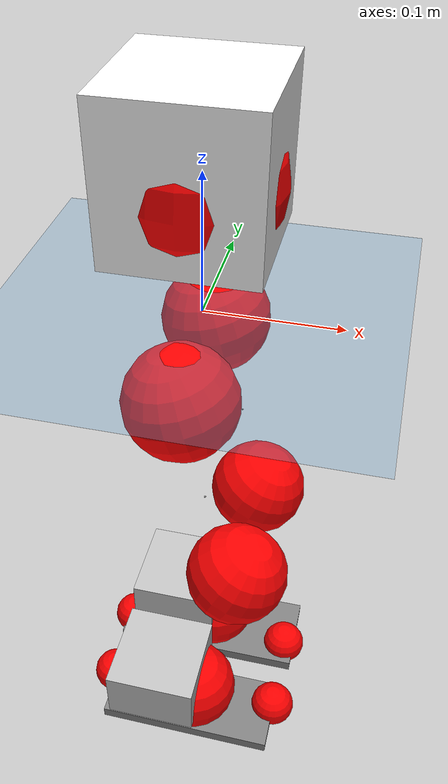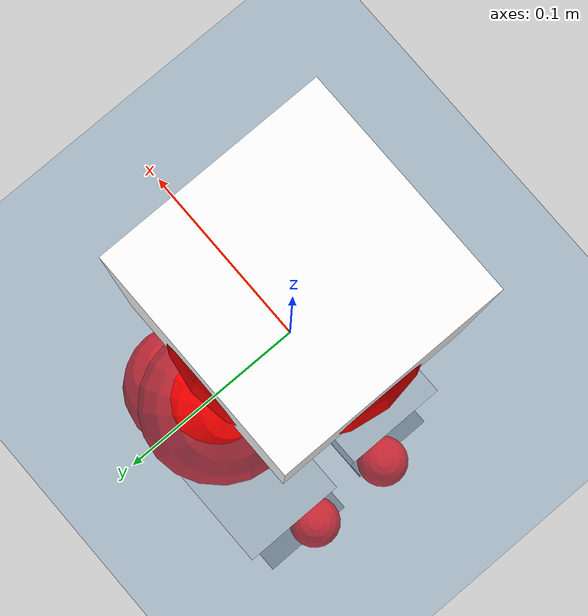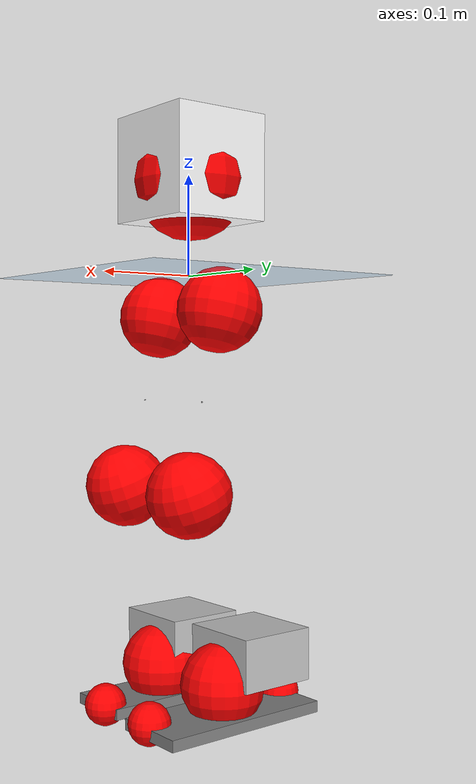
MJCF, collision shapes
<mujoco model="pi_12dof_release_v1">
  <compiler angle="radian" assetdir="assets" balanceinertia="true" inertiafromgeom="false"/>

  <option timestep="0.005" density="1.2" viscosity="2e-05"/>

  <size nkey="1"/>

  <visual>
    <quality shadowsize="8192"/>
    <map shadowclip="0.5"/>
  </visual>

  <default>
    <default class="/">
      <joint armature="0.01" damping="0.01" frictionloss="0.01"/>
      <geom contype="0" conaffinity="0" group="1" solref="-1000 -80"/>
      <site size="0.01 0.005 0.005" group="5"/>
      <general forcelimited="true" biastype="affine" gainprm="20" biasprm="0 -20 -0.5"/>
      <default class="foot">
        <geom size="0.0845 0.036 0.005" type="box" condim="6" group="4" priority="1" friction="0.9 0.2 0.2" solimp="0.015 1 0.005"/>
      </default>
      <default class="reward_collision_sphere">
        <geom group="5" rgba="1 0 0 1"/>
      </default>
    </default>
  </default>

  <asset>
    <texture type="skybox" colorspace="auto" name="//unnamed_texture_0" builtin="gradient" rgb1="0.95 0.95 0.95" rgb2="0.95 0.95 0.95" width="100" height="600"/>
    <texture type="2d" colorspace="auto" name="texplane" builtin="checker" rgb1="0.345 0.575 0.748" rgb2="0.345 0.575 0.748" markrgb="1 1 1" width="512" height="512"/>
    <material name="MatPlane" class="/" texture="texplane" texuniform="true" texrepeat="2 2" specular="0.9"/>
    <mesh name="baselink_1" class="/" file="baselink_1.STL"/>
    <mesh name="r_hip_pitch_link" class="/" file="r_hip_pitch_link.STL"/>
    <mesh name="r_hip_roll_link" class="/" file="r_hip_roll_link.STL"/>
    <mesh name="r_thigh_link" class="/" file="r_thigh_link.STL"/>
    <mesh name="r_calf_link" class="/" file="r_calf_link.STL"/>
    <mesh name="r_ankle_pitch_link" class="/" file="r_ankle_pitch_link.STL"/>
    <mesh name="r_ankle_roll_link" class="/" file="r_ankle_roll_link.STL"/>
    <mesh name="l_hip_pitch_link" class="/" file="l_hip_pitch_link.STL"/>
    <mesh name="l_hip_roll_link" class="/" file="l_hip_roll_link.STL"/>
    <mesh name="l_thigh_link" class="/" file="l_thigh_link.STL"/>
    <mesh name="l_calf_link" class="/" file="l_calf_link.STL"/>
    <mesh name="l_ankle_pitch_link" class="/" file="l_ankle_pitch_link.STL"/>
    <mesh name="l_ankle_roll_link" class="/" file="l_ankle_roll_link.STL"/>
  </asset>

  <worldbody>
    <geom name="floor" class="/" size="100 100 0.125" type="plane" group="0" material="MatPlane"/>
    <light name="toplight_shadow" class="/" pos="0 0 5" dir="0.0990148 0.0990148 -0.990148" type="directional" ambient="0.04 0.04 0.04" diffuse="0.55 0.55 0.55" specular="0.12 0.12 0.12"/>
    <light name="toplight_fill" class="/" pos="0 0 5" dir="0.0990148 0.0990148 -0.990148" type="directional" castshadow="false" ambient="0.04 0.04 0.04" diffuse="0.3 0.3 0.3" specular="0.08 0.08 0.08"/>
    <body name="trunk" pos="-0.00250303 -0.000508823 0.00218179" quat="1 0.000551557 -0.000517139 -0.00021815">
      <inertial pos="0.00839835 0.00246684 0.0507663" quat="0.700399 0.0191888 0.0132312 0.713371" mass="2.3943" diaginertia="0.0266854 0.000881658 0.016032"/>
      <joint name="//unnamed_joint_0" type="free"/>
      <geom name="//unnamed_geom_1" class="/" type="mesh" density="0" rgba="1 1 1 1" mesh="baselink_1"/>
      <geom name="//unnamed_geom_2" class="/" size="0.052426 0.052426 0.052426" pos="0 0 0.103862" type="box" rgba="1 1 1 1"/>
      <geom name="//unnamed_geom_3" class="reward_collision_sphere" size="0.0576686" pos="0 0 0.0908793"/>
      <site name="imu" class="/" pos="-0.018165 -0.0017016 0.0179184" size="0.0104852"/>
      <camera name="track" class="/" pos="0 -1.25175 0" quat="0.707107 0.707107 0 0" mode="trackcom"/>
      <camera name="ego_camera" class="/" pos="0.0916058 0 0.23369" quat="-0.5 -0.5 0.5 0.5"/>
      <body name="r_hip_pitch_link" pos="0.00121526 -0.0124755 -0.0432473" quat="0.992215 3.03302e-06 -0.124539 1.74324e-05">
        <inertial pos="0.000904081 -0.0337917 -4.12184e-05" quat="-0.0186106 0.705677 -0.0287408 0.707705" mass="0.461547" diaginertia="0.000312772 1.02835e-05 0.000326179"/>
        <joint name="r_hip_pitch_joint" class="/" pos="0 0 0" axis="-0.00199113 -0.999998 0.000851021" range="-1.71192 1.3336" armature="0.0117179" damping="0.013947" frictionloss="0.00956637"/>
        <geom name="//unnamed_geom_4" class="/" type="mesh" density="0" rgba="0.75294 0.75294 0.75294 1" mesh="r_hip_pitch_link"/>
        <geom name="//unnamed_geom_5" class="/" size="0.00052426 0.00052426 0.00052426" type="box" rgba="0.75294 0.75294 0.75294 1"/>
        <body name="r_hip_roll_link" pos="-0.000584406 -0.0396121 0.00130377" quat="0.999999 0.00105542 0.00110543 -0.000479001">
          <inertial pos="0.000556814 -0.000490157 -0.0788362" quat="0.706224 -0.0819917 -0.0888773 0.697586" mass="0.44315" diaginertia="0.000890814 2.78067e-05 0.000479185"/>
          <joint name="r_hip_roll_joint" class="/" pos="0 0 0" axis="-0.999989 0.00422927 0.0021943" range="-0.0791912 0.496908" armature="0.0104881" damping="0.0273537" frictionloss="0.00837648"/>
          <geom name="//unnamed_geom_6" class="/" type="mesh" density="0" rgba="0.75294 0.75294 0.75294 1" mesh="r_hip_roll_link"/>
          <geom name="//unnamed_geom_7" class="/" size="0.00052426 0.00052426 0.00052426" type="box" rgba="0.75294 0.75294 0.75294 1"/>
          <geom name="//unnamed_geom_8" class="reward_collision_sphere" size="0.0419408"/>
          <body name="r_thigh_link" pos="-0.00396737 -0.00277009 -0.0872371" quat="0.999999 0.000178523 0.000881989 0.000956418">
            <inertial pos="0.000743103 0.00399726 -0.0631837" quat="0.737097 0.675784 -0.000942028 -0.00174604" mass="0.124734" diaginertia="0.000338185 8.99614e-06 0.000213736"/>
            <joint name="r_thigh_joint" class="/" pos="0 0 0" axis="0.00312071 -0.00528349 -0.999981" range="-0.286946 0.52732" armature="0.00829171" damping="0" frictionloss="0.0110932"/>
            <geom name="//unnamed_geom_9" class="/" type="mesh" density="0" rgba="0.75294 0.75294 0.75294 1" mesh="r_thigh_link"/>
            <geom name="//unnamed_geom_10" class="/" size="0.00052426 0.00052426 0.00052426" type="box" rgba="0.75294 0.75294 0.75294 1"/>
            <body name="r_calf_link" pos="0.00396785 0.00352974 -0.091438" quat="0.947677 -0.000115384 0.319232 0.000165913">
              <inertial pos="-0.000534766 0.00496592 -0.0904739" quat="0.999792 -0.0106805 -0.00240705 -0.0172228" mass="0.950241" diaginertia="0.0100501 0.000330757 0.000671918"/>
              <joint name="r_calf_joint" class="/" pos="0 0 0" axis="0.00478317 -0.999989 0.000180423" stiffness="0.0105529" range="-1.65763 0.684045" armature="0.00974653" damping="0" frictionloss="0.0111536"/>
              <geom name="//unnamed_geom_11" class="/" type="mesh" density="0" rgba="0.75294 0.75294 0.75294 1" mesh="r_calf_link"/>
              <geom name="//unnamed_geom_12" class="/" size="0.00052426 0.00052426 0.00052426" type="box" rgba="0.75294 0.75294 0.75294 1"/>
              <geom name="//unnamed_geom_13" class="reward_collision_sphere" size="0.0419408"/>
              <body name="r_ankle_pitch_link" pos="-0.000403758 0.000349196 -0.179653" quat="0.980264 0.000428873 -0.197693 -0.00015789">
                <inertial pos="0.00205393 0.000200363 -0.000795491" quat="0.000554095 0.708183 -0.001734 0.706027" mass="0.192904" diaginertia="0.000809933 2.11897e-05 0.000408648"/>
                <joint name="r_ankle_pitch_joint" class="/" pos="0 0 0" axis="0.00147668 -0.999998 0.00125131" stiffness="0.001925" range="-1.35354 0.497261" armature="0.0105679" damping="0.0177011" frictionloss="0.00964651"/>
                <geom name="//unnamed_geom_14" class="/" type="mesh" density="0" rgba="0.75294 0.75294 0.75294 1" mesh="r_ankle_pitch_link"/>
                <geom name="//unnamed_geom_15" class="/" size="0.0408923 0.0419408 0.026213" type="box" rgba="0.75294 0.75294 0.75294 1"/>
                <body name="r_ankle_roll_link" pos="0.0913703 0.00488614 0.000279296" quat="1 -0.000213639 -7.77653e-05 -0.000156024">
                  <inertial pos="-0.0279117 -0.000179272 -0.0178051" quat="0.541656 0.432404 0.44305 0.568631" mass="0.590496" diaginertia="0.00308757 9.53722e-05 0.00101486"/>
                  <joint name="r_ankle_roll_joint" class="/" pos="0 0 0" axis="-0.999989 -0.000846512 -0.00456211" range="-0.154679 0.145749" armature="0.00837769" damping="0" frictionloss="0.0117926"/>
                  <geom name="//unnamed_geom_16" class="/" type="mesh" density="0" rgba="0.75294 0.75294 0.75294 1" mesh="r_ankle_roll_link"/>
                  <geom name="//unnamed_geom_17" class="/" type="mesh" rgba="0.75294 0.75294 0.75294 1" mesh="r_ankle_roll_link"/>
                  <geom name="right_foot" class="foot" size="0.0820075 0.0345573 0.00553335" pos="-0.0622919 0 -0.0571241"/>
                  <geom name="//unnamed_geom_19" class="reward_collision_sphere" size="0.0419408" pos="-0.0610705 0 -0.0259655"/>
                  <geom name="//unnamed_geom_20" class="reward_collision_sphere" size="0.0209704" pos="0.0183212 0.0125175 -0.051931"/>
                  <geom name="//unnamed_geom_21" class="reward_collision_sphere" size="0.0209704" pos="-0.146569 0.0125175 -0.051931"/>
                  <site name="right_foot" class="foot" pos="-0.0622919 0 -0.0571241" size="0.0104852"/>
                </body>
              </body>
            </body>
          </body>
        </body>
      </body>
      <body name="l_hip_pitch_link" pos="-0.00292047 0.0153732 -0.0397356" quat="0.992186 4.71969e-05 -0.124771 -4.24229e-05">
        <inertial pos="0.0019523 0.033404 0.00403504" quat="-0.0385478 0.703288 0.0372333 0.708882" mass="0.425031" diaginertia="0.000307958 9.29045e-06 0.000349071"/>
        <joint name="l_hip_pitch_joint" class="/" pos="0 0 0" axis="-0.00127472 0.999999 0.000523286" stiffness="0.000167694" range="-1.19372 1.75596" armature="0.0106963" damping="0.0107442" frictionloss="0.0106212"/>
        <geom name="//unnamed_geom_22" class="/" type="mesh" density="0" rgba="0.75294 0.75294 0.75294 1" mesh="l_hip_pitch_link"/>
        <geom name="//unnamed_geom_23" class="/" size="0.00052426 0.00052426 0.00052426" type="box" rgba="0.75294 0.75294 0.75294 1"/>
        <body name="l_hip_roll_link" pos="0.0045743 0.0335738 0.000809275" quat="1 0.000463996 0.000688495 -0.000172795">
          <inertial pos="0.00299496 0.00234592 -0.0747601" quat="0.699876 -0.0726028 -0.0755998 0.706532" mass="0.440837" diaginertia="0.000968637 2.66664e-05 0.000489861"/>
          <joint name="l_hip_roll_joint" class="/" pos="0 0 0" axis="-0.999862 0.00820065 0.0144508" range="-0.457881 0.0590114" armature="0.00915761" damping="0.00168353" frictionloss="0.0101405"/>
          <geom name="//unnamed_geom_24" class="/" type="mesh" density="0" rgba="0.75294 0.75294 0.75294 1" mesh="l_hip_roll_link"/>
          <geom name="//unnamed_geom_25" class="/" size="0.00052426 0.00052426 0.00052426" type="box" rgba="0.75294 0.75294 0.75294 1"/>
          <geom name="//unnamed_geom_26" class="reward_collision_sphere" size="0.0419408"/>
          <body name="l_thigh_link" pos="0.000440728 0.0016324 -0.091931" quat="1 0.000417196 0.000591592 0.000371778">
            <inertial pos="0.0011861 -0.00359471 -0.0642594" quat="0.67507 0.737753 0.000467795 0.000124035" mass="0.120753" diaginertia="0.000317428 8.18983e-06 0.000204684"/>
            <joint name="l_thigh_joint" class="/" pos="0 0 0" axis="0.00239658 1.06823e-05 -0.999997" stiffness="0.0112288" range="-0.522175 0.291271" armature="0.0115697" damping="0" frictionloss="0.010185"/>
            <geom name="//unnamed_geom_27" class="/" type="mesh" density="0" rgba="0.75294 0.75294 0.75294 1" mesh="l_thigh_link"/>
            <geom name="//unnamed_geom_28" class="/" size="0.00052426 0.00052426 0.00052426" type="box" rgba="0.75294 0.75294 0.75294 1"/>
            <body name="l_calf_link" pos="-0.00553483 0.00188538 -0.0903636" quat="0.947672 0.00018726 0.319244 0.00123416">
              <inertial pos="-0.000201903 0.00276843 -0.0863527" quat="0.99968 -0.0125846 0.0207869 -0.00702586" mass="0.972418" diaginertia="0.0101359 0.000354868 0.000685317"/>
              <joint name="l_calf_joint" class="/" pos="0 0 0" axis="-0.0089661 0.999959 0.00139401" stiffness="0.0119553" range="-0.635197 1.69563" armature="0.00978149" damping="0.0136588" frictionloss="0.01157"/>
              <geom name="//unnamed_geom_29" class="/" type="mesh" density="0" rgba="0.75294 0.75294 0.75294 1" mesh="l_calf_link"/>
              <geom name="//unnamed_geom_30" class="/" size="0.00052426 0.00052426 0.00052426" type="box" rgba="0.75294 0.75294 0.75294 1"/>
              <geom name="//unnamed_geom_31" class="reward_collision_sphere" size="0.0419408"/>
              <body name="l_ankle_pitch_link" pos="-0.00455633 0.00311396 -0.178414" quat="0.980207 0.000827767 -0.197973 -3.63502e-05">
                <inertial pos="0.00588475 -1.04343e-05 0.00226947" quat="-0.000799345 0.707263 0.0038433 0.706939" mass="0.205358" diaginertia="0.000847767 2.09062e-05 0.000430084"/>
                <joint name="l_ankle_pitch_joint" class="/" pos="0 0 0" axis="5.15655e-05 1 0.00026411" range="-0.527782 1.30506" armature="0.0105196" damping="0.00973338" frictionloss="0.0114092"/>
                <geom name="//unnamed_geom_32" class="/" type="mesh" density="0" rgba="0.75294 0.75294 0.75294 1" mesh="l_ankle_pitch_link"/>
                <geom name="//unnamed_geom_33" class="/" size="0.0408923 0.0419408 0.026213" type="box" rgba="0.75294 0.75294 0.75294 1"/>
                <body name="l_ankle_roll_link" pos="0.0953713 -0.00156037 -0.00141302" quat="0.999998 1.41199e-05 -0.000458208 0.00177852">
                  <inertial pos="-0.031383 -0.00184439 -0.0167267" quat="0.564306 0.430389 0.434868 0.554269" mass="0.581567" diaginertia="0.00303558 9.88981e-05 0.00102236"/>
                  <joint name="l_ankle_roll_joint" class="/" pos="0 0 0" axis="-0.999986 -0.00168756 -0.00498715" stiffness="0.0175872" range="-0.201206 0.161656" armature="0.00954124" damping="0" frictionloss="0.0112966"/>
                  <geom name="//unnamed_geom_34" class="/" type="mesh" density="0" rgba="0.75294 0.75294 0.75294 1" mesh="l_ankle_roll_link"/>
                  <geom name="//unnamed_geom_35" class="/" type="mesh" rgba="0.75294 0.75294 0.75294 1" mesh="l_ankle_roll_link"/>
                  <geom name="left_foot" class="foot" size="0.0911436 0.0384847 0.0056625" pos="-0.0622919 0 -0.0571241"/>
                  <geom name="//unnamed_geom_37" class="reward_collision_sphere" size="0.0419408" pos="-0.0610705 0 -0.0259655"/>
                  <geom name="//unnamed_geom_38" class="reward_collision_sphere" size="0.0209704" pos="0.0183212 -0.0125175 -0.051931"/>
                  <geom name="//unnamed_geom_39" class="reward_collision_sphere" size="0.0209704" pos="-0.146569 -0.0125175 -0.051931"/>
                  <site name="left_foot" class="foot" pos="-0.0622919 0 -0.0571241" size="0.0104852"/>
                </body>
              </body>
            </body>
          </body>
        </body>
      </body>
    </body>
  </worldbody>

  <contact>
    <pair class="/" geom1="floor" geom2="right_foot" name="//unnamed_contact_1"/>
    <pair class="/" geom1="floor" geom2="left_foot" name="//unnamed_contact_0"/>
  </contact>

  <actuator>
    <general name="r_hip_pitch_joint" class="/" joint="r_hip_pitch_joint" forcerange="-20.6483 20.6483" gainprm="23.942" biasprm="0 -23.942 -0.537231"/>
    <general name="r_hip_roll_joint" class="/" joint="r_hip_roll_joint" forcerange="-21.6206 21.6206" gainprm="23.942" biasprm="0 -23.942 -0.537231"/>
    <general name="r_thigh_joint" class="/" joint="r_thigh_joint" forcerange="-23.1416 23.1416" gainprm="23.942" biasprm="0 -23.942 -0.537231"/>
    <general name="r_calf_joint" class="/" joint="r_calf_joint" forcerange="-19.1935 19.1935" gainprm="23.942" biasprm="0 -23.942 -0.537231"/>
    <general name="r_ankle_pitch_joint" class="/" joint="r_ankle_pitch_joint" forcerange="-23.8299 23.8299" gainprm="23.942" biasprm="0 -23.942 -0.537231"/>
    <general name="r_ankle_roll_joint" class="/" joint="r_ankle_roll_joint" forcerange="-20.4638 20.4638" gainprm="23.942" biasprm="0 -23.942 -0.537231"/>
    <general name="l_hip_pitch_joint" class="/" joint="l_hip_pitch_joint" forcerange="-23.2116 23.2116" gainprm="23.942" biasprm="0 -23.942 -0.537231"/>
    <general name="l_hip_roll_joint" class="/" joint="l_hip_roll_joint" forcerange="-25.44 25.44" gainprm="23.942" biasprm="0 -23.942 -0.537231"/>
    <general name="l_thigh_joint" class="/" joint="l_thigh_joint" forcerange="-20.1393 20.1393" gainprm="23.942" biasprm="0 -23.942 -0.537231"/>
    <general name="l_calf_joint" class="/" joint="l_calf_joint" forcerange="-21.8439 21.8439" gainprm="23.942" biasprm="0 -23.942 -0.537231"/>
    <general name="l_ankle_pitch_joint" class="/" joint="l_ankle_pitch_joint" forcerange="-21.4786 21.4786" gainprm="23.942" biasprm="0 -23.942 -0.537231"/>
    <general name="l_ankle_roll_joint" class="/" joint="l_ankle_roll_joint" forcerange="-19.8547 19.8547" gainprm="23.942" biasprm="0 -23.942 -0.537231"/>
  </actuator>

  <sensor>
    <gyro site="imu" name="imu_angular_velocity"/>
    <velocimeter site="imu" name="imu_linear_velocity"/>
    <framelinvel objtype="site" objname="left_foot" name="left_foot_global_linear_velocity"/>
    <framelinvel objtype="site" objname="right_foot" name="right_foot_global_linear_velocity"/>
  </sensor>

  <keyframe>
    <key name="home" qpos="0 0 0.291 1 0 0 0 0.4 0 0 -0.8 0.4 0 -0.4 0 0 0.8 -0.4 0"/>
  </keyframe>
</mujoco>
